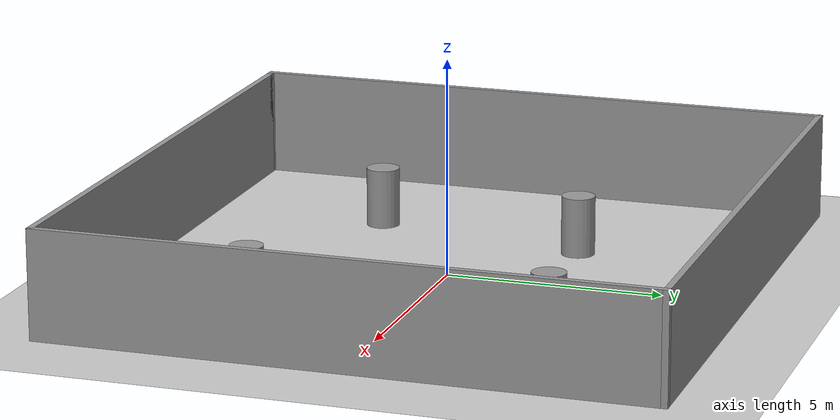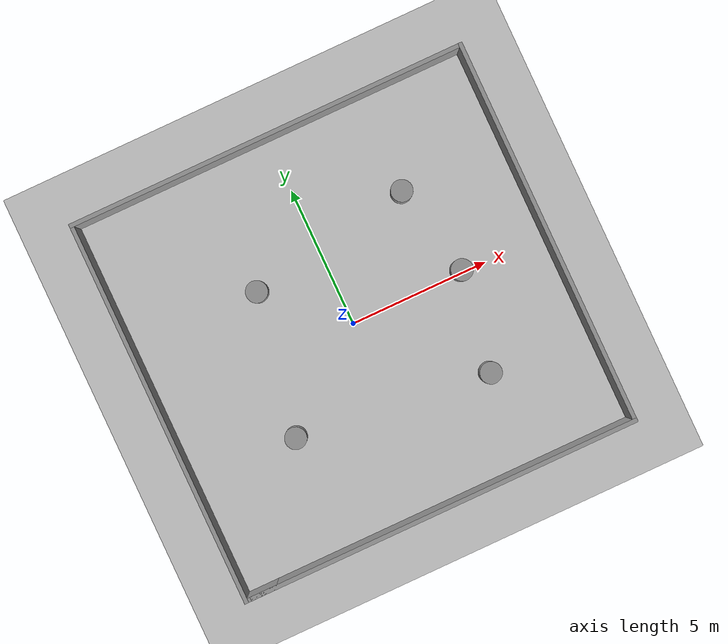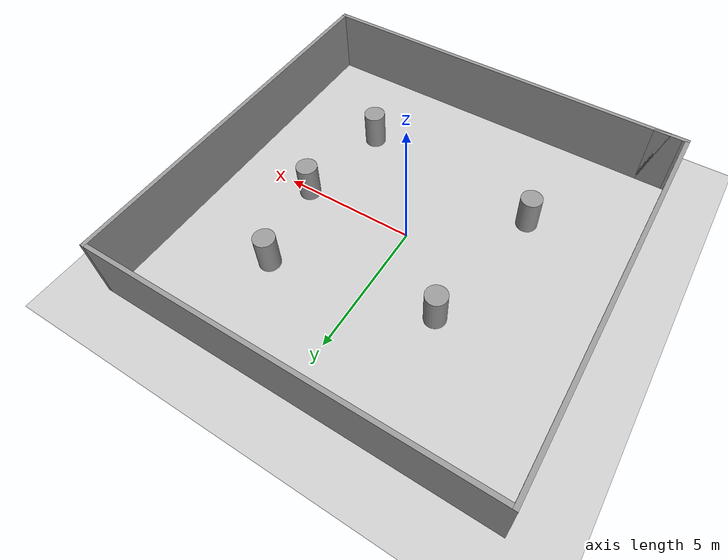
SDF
<sdf version="1.6">
 <world name="default">
  <light name="sun" type="directional">
   <pose>0 0 10 0 -0 0</pose>
   <diffuse>0.8 0.8 0.8 1</diffuse>
   <specular>0.2 0.2 0.2 1</specular>
   <attenuation>
    <range>1000</range>
    <constant>0.9</constant>
    <linear>0.01</linear>
    <quadratic>0.001</quadratic>
   </attenuation>
   <direction>-0.5 0.1 -0.9</direction>
  </light>
  <model name="ground_plane">
   <static>1</static>
   <link name="link">
    <collision name="collision">
     <geometry><plane><normal>0 0 1</normal><size>100 100</size></plane></geometry>
     <surface>
      <contact><collide_bitmask>65535</collide_bitmask></contact>
      <friction><ode><mu>100</mu><mu2>50</mu2></ode></friction>
     </surface>
    </collision>
    <visual name="visual">
     <cast_shadows>0</cast_shadows>
     <geometry><plane><normal>0 0 1</normal><size>100 100</size></plane></geometry>
     <material>
      <script><uri>file://media/materials/scripts/gazebo.material</uri><name>Gazebo/Grey</name></script>
     </material>
    </visual>
   </link>
  </model>
  <gravity>0 0 -9.8</gravity>
  <magnetic_field>6e-06 2.3e-05 -4.2e-05</magnetic_field>
  <atmosphere type="adiabatic"/>
  <physics name="default_physics" default="0" type="ode">
   <max_step_size>0.005</max_step_size>
   <real_time_factor>1</real_time_factor>
   <real_time_update_rate>000</real_time_update_rate>
  </physics>
  <scene><ambient>0.4 0.4 0.4 1</ambient><background>0.7 0.7 0.7 1</background><shadows>1</shadows></scene>
  <audio><device>default</device></audio>
  <spherical_coordinates>
   <surface_model>EARTH_WGS84</surface_model>
   <latitude_deg>0</latitude_deg>
   <longitude_deg>0</longitude_deg>
   <elevation>0</elevation>
   <heading_deg>0</heading_deg>
  </spherical_coordinates>
  <model name="7x7">
   <pose>0.012614 0.017129 0 0 -0 0</pose>
   <link name="Wall_0">
    <collision name="Wall_0_Collision">
     <geometry><box><size>14.25 0.15 2.5</size></box></geometry>
     <pose>0 0 1.25 0 -0 0</pose>
    </collision>
    <visual name="Wall_0_Visual">
     <pose>0 0 1.25 0 -0 0</pose>
     <geometry><box><size>14.25 0.15 2.5</size></box></geometry>
     <material>
      <script><uri>file://media/materials/scripts/gazebo.material</uri><name>Gazebo/Grey</name></script>
      <ambient>1 1 1 1</ambient>
     </material>
     <meta><layer>0</layer></meta>
    </visual>
    <pose>0.125 -6.925 0 0 -0 0</pose>
   </link>
   <link name="Wall_1">
    <collision name="Wall_1_Collision">
     <geometry><box><size>14 0.15 2.5</size></box></geometry>
     <pose>0 0 1.25 0 -0 0</pose>
    </collision>
    <visual name="Wall_1_Visual">
     <pose>0 0 1.25 0 -0 0</pose>
     <geometry><box><size>14 0.15 2.5</size></box></geometry>
     <material>
      <script><uri>file://media/materials/scripts/gazebo.material</uri><name>Gazebo/Grey</name></script>
      <ambient>1 1 1 1</ambient>
     </material>
     <meta><layer>0</layer></meta>
    </visual>
    <pose>7.175 0 0 0 -0 1.5708</pose>
   </link>
   <link name="Wall_2">
    <collision name="Wall_2_Collision">
     <geometry><box><size>14.5 0.15 2.5</size></box></geometry>
     <pose>0 0 1.25 0 -0 0</pose>
    </collision>
    <visual name="Wall_2_Visual">
     <pose>0 0 1.25 0 -0 0</pose>
     <geometry><box><size>14.5 0.15 2.5</size></box></geometry>
     <material>
      <script><uri>file://media/materials/scripts/gazebo.material</uri><name>Gazebo/Grey</name></script>
      <ambient>1 1 1 1</ambient>
     </material>
     <meta><layer>0</layer></meta>
    </visual>
    <pose>-0 6.925 0 0 -0 3.14159</pose>
   </link>
   <link name="Wall_3">
    <collision name="Wall_3_Collision">
     <geometry><box><size>14 0.15 2.5</size></box></geometry>
     <pose>0 0 1.25 0 -0 0</pose>
    </collision>
    <visual name="Wall_3_Visual">
     <pose>0 0 1.25 0 -0 0</pose>
     <geometry><box><size>14 0.15 2.5</size></box></geometry>
     <material>
      <script><uri>file://media/materials/scripts/gazebo.material</uri><name>Gazebo/Grey</name></script>
      <ambient>1 1 1 1</ambient>
     </material>
     <meta><layer>0</layer></meta>
    </visual>
    <pose>-7.175 0 0 0 -0 -1.5708</pose>
   </link>
   <link name="Wall_4">
    <collision name="Wall_4_Collision">
     <geometry><box><size>1.25 0.15 2.5</size></box></geometry>
     <pose>0 0 1.25 0 -0 0</pose>
    </collision>
    <visual name="Wall_4_Visual">
     <pose>0 0 1.25 0 -0 0</pose>
     <geometry><box><size>1.25 0.15 2.5</size></box></geometry>
     <material>
      <script><uri>file://media/materials/scripts/gazebo.material</uri><name>Gazebo/Grey</name></script>
      <ambient>1 1 1 1</ambient>
     </material>
     <meta><layer>0</layer></meta>
    </visual>
    <pose>-6.625 -6.925 0 0 -0 0</pose>
   </link>
   <static>1</static>
  </model>
  <model name="small_cylinder">
   <link name="link_2">
    <inertial>
     <mass>0.838617</mass>
     <inertia>
      <ixx>0.166859</ixx>
      <ixy>0</ixy>
      <ixz>0</ixz>
      <iyy>0.166859</iyy>
      <iyz>0</iyz>
      <izz>0.0631896</izz>
     </inertia>
    </inertial>
    <pose>-0.01653 1.06933 0 0 -0 0</pose>
    <visual name="visual">
     <geometry><cylinder><radius>0.388201</radius><length>1.39123</length></cylinder></geometry>
     <material>
      <lighting>1</lighting>
      <script><uri>file://media/materials/scripts/gazebo.material</uri><name>Gazebo/Grey</name></script>
     </material>
    </visual>
    <collision name="collision">
     <geometry><cylinder><radius>0.388201</radius><length>1.39123</length></cylinder></geometry>
     <surface>
      <friction>
       <ode><mu>1</mu><mu2>1</mu2><fdir1>0 0 0</fdir1><slip1>0</slip1><slip2>0</slip2></ode>
       <torsional>
        <coefficient>1</coefficient>
        <patch_radius>0</patch_radius>
        <surface_radius>0</surface_radius>
        <use_patch_radius>1</use_patch_radius>
        <ode><slip>0</slip></ode>
       </torsional>
      </friction>
      <bounce><restitution_coefficient>0</restitution_coefficient><threshold>1e+06</threshold></bounce>
      <contact>
       <collide_without_contact>0</collide_without_contact>
       <collide_without_contact_bitmask>1</collide_without_contact_bitmask>
       <collide_bitmask>1</collide_bitmask>
       <ode>
        <soft_cfm>0</soft_cfm>
        <soft_erp>0.2</soft_erp>
        <kp>1e+13</kp>
        <kd>1</kd>
        <max_vel>0.01</max_vel>
        <min_depth>0</min_depth>
       </ode>
       <bullet>
        <split_impulse>1</split_impulse>
        <split_impulse_penetration_threshold>-0.01</split_impulse_penetration_threshold>
        <soft_cfm>0</soft_cfm>
        <soft_erp>0.2</soft_erp>
        <kp>1e+13</kp>
        <kd>1</kd>
       </bullet>
      </contact>
     </surface>
    </collision>
   </link>
   <static>0</static>
   <pose>-3.37585 -3.76481 0.695606 0 -0 0</pose>
  </model>
  <model name="small_cylinder_0">
   <link name="link_2">
    <inertial>
     <mass>0.838617</mass>
     <inertia>
      <ixx>0.166859</ixx>
      <ixy>0</ixy>
      <ixz>0</ixz>
      <iyy>0.166859</iyy>
      <iyz>0</iyz>
      <izz>0.0631896</izz>
     </inertia>
    </inertial>
    <pose>-0.01653 1.06933 0 0 -0 0</pose>
    <visual name="visual">
     <geometry><cylinder><radius>0.388201</radius><length>1.39123</length></cylinder></geometry>
     <material>
      <lighting>1</lighting>
      <script><uri>file://media/materials/scripts/gazebo.material</uri><name>Gazebo/Grey</name></script>
     </material>
    </visual>
    <collision name="collision">
     <geometry><cylinder><radius>0.388201</radius><length>1.39123</length></cylinder></geometry>
     <surface>
      <friction>
       <ode><mu>1</mu><mu2>1</mu2><fdir1>0 0 0</fdir1><slip1>0</slip1><slip2>0</slip2></ode>
       <torsional>
        <coefficient>1</coefficient>
        <patch_radius>0</patch_radius>
        <surface_radius>0</surface_radius>
        <use_patch_radius>1</use_patch_radius>
        <ode><slip>0</slip></ode>
       </torsional>
      </friction>
      <bounce><restitution_coefficient>0</restitution_coefficient><threshold>1e+06</threshold></bounce>
      <contact>
       <collide_without_contact>0</collide_without_contact>
       <collide_without_contact_bitmask>1</collide_without_contact_bitmask>
       <collide_bitmask>1</collide_bitmask>
       <ode>
        <soft_cfm>0</soft_cfm>
        <soft_erp>0.2</soft_erp>
        <kp>1e+13</kp>
        <kd>1</kd>
        <max_vel>0.01</max_vel>
        <min_depth>0</min_depth>
       </ode>
       <bullet>
        <split_impulse>1</split_impulse>
        <split_impulse_penetration_threshold>-0.01</split_impulse_penetration_threshold>
        <soft_cfm>0</soft_cfm>
        <soft_erp>0.2</soft_erp>
        <kp>1e+13</kp>
        <kd>1</kd>
       </bullet>
      </contact>
     </surface>
    </collision>
   </link>
   <static>0</static>
   <pose>-2.48658 1.28599 0.695614 0 -0 0</pose>
  </model>
  <model name="small_cylinder_1">
   <link name="link_2">
    <inertial>
     <mass>0.838617</mass>
     <inertia>
      <ixx>0.166859</ixx>
      <ixy>0</ixy>
      <ixz>0</ixz>
      <iyy>0.166859</iyy>
      <iyz>0</iyz>
      <izz>0.0631896</izz>
     </inertia>
    </inertial>
    <pose>-0.01653 1.06933 0 0 -0 0</pose>
    <visual name="visual">
     <geometry><cylinder><radius>0.388201</radius><length>1.39123</length></cylinder></geometry>
     <material>
      <lighting>1</lighting>
      <script><uri>file://media/materials/scripts/gazebo.material</uri><name>Gazebo/Grey</name></script>
     </material>
    </visual>
    <collision name="collision">
     <geometry><cylinder><radius>0.388201</radius><length>1.39123</length></cylinder></geometry>
     <surface>
      <friction>
       <ode><mu>1</mu><mu2>1</mu2><fdir1>0 0 0</fdir1><slip1>0</slip1><slip2>0</slip2></ode>
       <torsional>
        <coefficient>1</coefficient>
        <patch_radius>0</patch_radius>
        <surface_radius>0</surface_radius>
        <use_patch_radius>1</use_patch_radius>
        <ode><slip>0</slip></ode>
       </torsional>
      </friction>
      <bounce><restitution_coefficient>0</restitution_coefficient><threshold>1e+06</threshold></bounce>
      <contact>
       <collide_without_contact>0</collide_without_contact>
       <collide_without_contact_bitmask>1</collide_without_contact_bitmask>
       <collide_bitmask>1</collide_bitmask>
       <ode>
        <soft_cfm>0</soft_cfm>
        <soft_erp>0.2</soft_erp>
        <kp>1e+13</kp>
        <kd>1</kd>
        <max_vel>0.01</max_vel>
        <min_depth>0</min_depth>
       </ode>
       <bullet>
        <split_impulse>1</split_impulse>
        <split_impulse_penetration_threshold>-0.01</split_impulse_penetration_threshold>
        <soft_cfm>0</soft_cfm>
        <soft_erp>0.2</soft_erp>
        <kp>1e+13</kp>
        <kd>1</kd>
       </bullet>
      </contact>
     </surface>
    </collision>
   </link>
   <static>0</static>
   <pose>3.40347 2.31426 0.695606 0 -0 0</pose>
  </model>
  <model name="small_cylinder_2">
   <link name="link_2">
    <inertial>
     <mass>0.838617</mass>
     <inertia>
      <ixx>0.166859</ixx>
      <ixy>0</ixy>
      <ixz>0</ixz>
      <iyy>0.166859</iyy>
      <iyz>0</iyz>
      <izz>0.0631896</izz>
     </inertia>
    </inertial>
    <pose>-0.01653 1.06933 0 0 -0 0</pose>
    <visual name="visual">
     <geometry><cylinder><radius>0.388201</radius><length>1.39123</length></cylinder></geometry>
     <material>
      <lighting>1</lighting>
      <script><uri>file://media/materials/scripts/gazebo.material</uri><name>Gazebo/Grey</name></script>
     </material>
    </visual>
    <collision name="collision">
     <geometry><cylinder><radius>0.388201</radius><length>1.39123</length></cylinder></geometry>
     <surface>
      <friction>
       <ode><mu>1</mu><mu2>1</mu2><fdir1>0 0 0</fdir1><slip1>0</slip1><slip2>0</slip2></ode>
       <torsional>
        <coefficient>1</coefficient>
        <patch_radius>0</patch_radius>
        <surface_radius>0</surface_radius>
        <use_patch_radius>1</use_patch_radius>
        <ode><slip>0</slip></ode>
       </torsional>
      </friction>
      <bounce><restitution_coefficient>0</restitution_coefficient><threshold>1e+06</threshold></bounce>
      <contact>
       <collide_without_contact>0</collide_without_contact>
       <collide_without_contact_bitmask>1</collide_without_contact_bitmask>
       <collide_bitmask>1</collide_bitmask>
       <ode>
        <soft_cfm>0</soft_cfm>
        <soft_erp>0.2</soft_erp>
        <kp>1e+13</kp>
        <kd>1</kd>
        <max_vel>0.01</max_vel>
        <min_depth>0</min_depth>
       </ode>
       <bullet>
        <split_impulse>1</split_impulse>
        <split_impulse_penetration_threshold>-0.01</split_impulse_penetration_threshold>
        <soft_cfm>0</soft_cfm>
        <soft_erp>0.2</soft_erp>
        <kp>1e+13</kp>
        <kd>1</kd>
       </bullet>
      </contact>
     </surface>
    </collision>
   </link>
   <static>0</static>
   <pose>3.5462 -4.54117 0.695614 0 -0 0</pose>
  </model>
  <model name="small_cylinder_3">
   <link name="link_2">
    <inertial>
     <mass>0.838617</mass>
     <inertia>
      <ixx>0.166859</ixx>
      <ixy>0</ixy>
      <ixz>0</ixz>
      <iyy>0.166859</iyy>
      <iyz>0</iyz>
      <izz>0.0631896</izz>
     </inertia>
    </inertial>
    <pose>-0.01653 1.06933 0 0 -0 0</pose>
    <visual name="visual">
     <geometry><cylinder><radius>0.388201</radius><length>1.39123</length></cylinder></geometry>
     <material>
      <lighting>1</lighting>
      <script><uri>file://media/materials/scripts/gazebo.material</uri><name>Gazebo/Grey</name></script>
     </material>
    </visual>
    <collision name="collision">
     <geometry><cylinder><radius>0.388201</radius><length>1.39123</length></cylinder></geometry>
     <surface>
      <friction>
       <ode><mu>1</mu><mu2>1</mu2><fdir1>0 0 0</fdir1><slip1>0</slip1><slip2>0</slip2></ode>
       <torsional>
        <coefficient>1</coefficient>
        <patch_radius>0</patch_radius>
        <surface_radius>0</surface_radius>
        <use_patch_radius>1</use_patch_radius>
        <ode><slip>0</slip></ode>
       </torsional>
      </friction>
      <bounce><restitution_coefficient>0</restitution_coefficient><threshold>1e+06</threshold></bounce>
      <contact>
       <collide_without_contact>0</collide_without_contact>
       <collide_without_contact_bitmask>1</collide_without_contact_bitmask>
       <collide_bitmask>1</collide_bitmask>
       <ode>
        <soft_cfm>0</soft_cfm>
        <soft_erp>0.2</soft_erp>
        <kp>1e+13</kp>
        <kd>1</kd>
        <max_vel>0.01</max_vel>
        <min_depth>0</min_depth>
       </ode>
       <bullet>
        <split_impulse>1</split_impulse>
        <split_impulse_penetration_threshold>-0.01</split_impulse_penetration_threshold>
        <soft_cfm>0</soft_cfm>
        <soft_erp>0.2</soft_erp>
        <kp>1e+13</kp>
        <kd>1</kd>
       </bullet>
      </contact>
     </surface>
    </collision>
   </link>
   <static>0</static>
   <pose>4.12465 -0.969021 0.695606 0 -0 0</pose>
  </model>
 </world>
</sdf>
